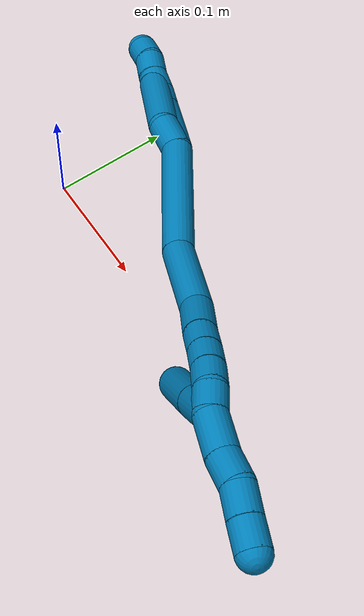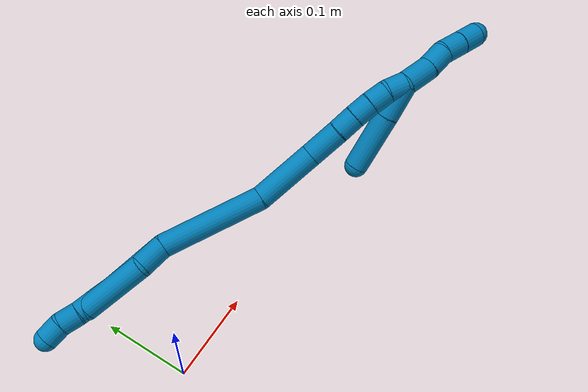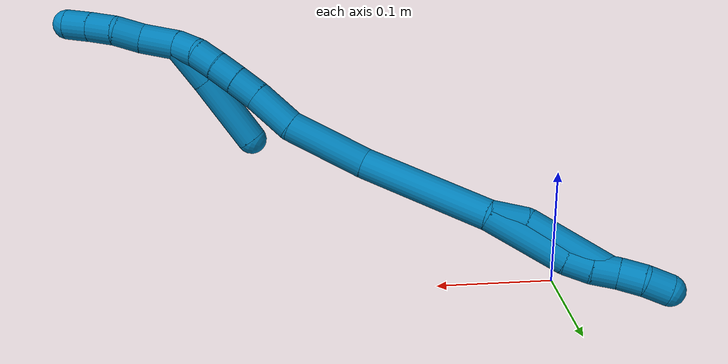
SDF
<sdf version="1.7">
 <world name="default">
  <model name="9">
   <static>0</static>
   <link name="9">
    <collision name="collision-cylinder-e_1_2_8">
     <pose>-0.001456 0.000214 -0.033982 -3.1353 -0.042818 2.84975</pose>
     <geometry><cylinder><radius>0.0125</radius><length>0.068028</length></cylinder></geometry>
     <surface>
      <friction><ode><mu>1.16</mu><mu2>1.16</mu2><slip1>0</slip1><slip2>0</slip2></ode></friction>
      <contact><ode><kp>1e+06</kp><kd>1</kd><max_vel>0</max_vel><min_depth>0.001</min_depth></ode></contact>
     </surface>
    </collision>
    <visual name="visual-cylinder-e_1_2_8">
     <pose>-0.001456 0.000214 -0.033982 -3.1353 -0.042818 2.84975</pose>
     <geometry><cylinder><radius>0.0125</radius><length>0.068028</length></cylinder></geometry>
     <material><ambient>0 0.490196 0.709804 1</ambient></material>
    </visual>
    <collision name="collision-cylinder-e_2_8_9">
     <pose>-0.00538 0.000702 -0.078069 -3.11444 -0.2395 2.91683</pose>
     <geometry><cylinder><radius>0.0125</radius><length>0.020811</length></cylinder></geometry>
     <surface>
      <friction><ode><mu>1.16</mu><mu2>1.16</mu2><slip1>0</slip1><slip2>0</slip2></ode></friction>
      <contact><ode><kp>1e+06</kp><kd>1</kd><max_vel>0</max_vel><min_depth>0.001</min_depth></ode></contact>
     </surface>
    </collision>
    <visual name="visual-cylinder-e_2_8_9">
     <pose>-0.00538 0.000702 -0.078069 -3.11444 -0.2395 2.91683</pose>
     <geometry><cylinder><radius>0.0125</radius><length>0.020811</length></cylinder></geometry>
     <material><ambient>0 0.490196 0.709804 1</ambient></material>
    </visual>
    <collision name="collision-cylinder-e_3_9_10">
     <pose>-0.011578 0.000534 -0.097724 3.0953 -0.371881 -2.89671</pose>
     <geometry><cylinder><radius>0.0125</radius><length>0.020525</length></cylinder></geometry>
     <surface>
      <friction><ode><mu>1.16</mu><mu2>1.16</mu2><slip1>0</slip1><slip2>0</slip2></ode></friction>
      <contact><ode><kp>1e+06</kp><kd>1</kd><max_vel>0</max_vel><min_depth>0.001</min_depth></ode></contact>
     </surface>
    </collision>
    <visual name="visual-cylinder-e_3_9_10">
     <pose>-0.011578 0.000534 -0.097724 3.0953 -0.371881 -2.89671</pose>
     <geometry><cylinder><radius>0.0125</radius><length>0.020525</length></cylinder></geometry>
     <material><ambient>0 0.490196 0.709804 1</ambient></material>
    </visual>
    <collision name="collision-cylinder-e_4_10_11">
     <pose>-0.018528 0.001008 -0.116989 -3.04761 -0.318832 2.57248</pose>
     <geometry><cylinder><radius>0.0125</radius><length>0.020551</length></cylinder></geometry>
     <surface>
      <friction><ode><mu>1.16</mu><mu2>1.16</mu2><slip1>0</slip1><slip2>0</slip2></ode></friction>
      <contact><ode><kp>1e+06</kp><kd>1</kd><max_vel>0</max_vel><min_depth>0.001</min_depth></ode></contact>
     </surface>
    </collision>
    <visual name="visual-cylinder-e_4_10_11">
     <pose>-0.018528 0.001008 -0.116989 -3.04761 -0.318832 2.57248</pose>
     <geometry><cylinder><radius>0.0125</radius><length>0.020551</length></cylinder></geometry>
     <material><ambient>0 0.490196 0.709804 1</ambient></material>
    </visual>
    <collision name="collision-cylinder-e_5_11_6">
     <pose>-0.023378 0.00051 -0.136512 2.99848 -0.162935 -1.70066</pose>
     <geometry><cylinder><radius>0.0125</radius><length>0.020086</length></cylinder></geometry>
     <surface>
      <friction><ode><mu>1.16</mu><mu2>1.16</mu2><slip1>0</slip1><slip2>0</slip2></ode></friction>
      <contact><ode><kp>1e+06</kp><kd>1</kd><max_vel>0</max_vel><min_depth>0.001</min_depth></ode></contact>
     </surface>
    </collision>
    <visual name="visual-cylinder-e_5_11_6">
     <pose>-0.023378 0.00051 -0.136512 2.99848 -0.162935 -1.70066</pose>
     <geometry><cylinder><radius>0.0125</radius><length>0.020086</length></cylinder></geometry>
     <material><ambient>0 0.490196 0.709804 1</ambient></material>
    </visual>
    <collision name="collision-cylinder-e_1_2_12">
     <pose>-0.004839 -0.002045 -0.013832 2.99482 -0.333171 -2.3172</pose>
     <geometry><cylinder><radius>0.0125</radius><length>0.029593</length></cylinder></geometry>
     <surface>
      <friction><ode><mu>1.16</mu><mu2>1.16</mu2><slip1>0</slip1><slip2>0</slip2></ode></friction>
      <contact><ode><kp>1e+06</kp><kd>1</kd><max_vel>0</max_vel><min_depth>0.001</min_depth></ode></contact>
     </surface>
    </collision>
    <visual name="visual-cylinder-e_1_2_12">
     <pose>-0.004839 -0.002045 -0.013832 2.99482 -0.333171 -2.3172</pose>
     <geometry><cylinder><radius>0.0125</radius><length>0.029593</length></cylinder></geometry>
     <material><ambient>0 0.490196 0.709804 1</ambient></material>
    </visual>
    <collision name="collision-cylinder-e_2_12_5">
     <pose>-0.011002 -0.002605 -0.062812 -3.09936 -0.037616 1.4553</pose>
     <geometry><cylinder><radius>0.0125</radius><length>0.070407</length></cylinder></geometry>
     <surface>
      <friction><ode><mu>1.16</mu><mu2>1.16</mu2><slip1>0</slip1><slip2>0</slip2></ode></friction>
      <contact><ode><kp>1e+06</kp><kd>1</kd><max_vel>0</max_vel><min_depth>0.001</min_depth></ode></contact>
     </surface>
    </collision>
    <visual name="visual-cylinder-e_2_12_5">
     <pose>-0.011002 -0.002605 -0.062812 -3.09936 -0.037616 1.4553</pose>
     <geometry><cylinder><radius>0.0125</radius><length>0.070407</length></cylinder></geometry>
     <material><ambient>0 0.490196 0.709804 1</ambient></material>
    </visual>
    <collision name="collision-cylinder-e_1_2_13">
     <pose>0.011543 -0.011772 0.053384 0.217035 0.208104 0.022753</pose>
     <geometry><cylinder><radius>0.0125</radius><length>0.111744</length></cylinder></geometry>
     <surface>
      <friction><ode><mu>1.16</mu><mu2>1.16</mu2><slip1>0</slip1><slip2>0</slip2></ode></friction>
      <contact><ode><kp>1e+06</kp><kd>1</kd><max_vel>0</max_vel><min_depth>0.001</min_depth></ode></contact>
     </surface>
    </collision>
    <visual name="visual-cylinder-e_1_2_13">
     <pose>0.011543 -0.011772 0.053384 0.217035 0.208104 0.022753</pose>
     <geometry><cylinder><radius>0.0125</radius><length>0.111744</length></cylinder></geometry>
     <material><ambient>0 0.490196 0.709804 1</ambient></material>
    </visual>
    <collision name="collision-cylinder-e_2_13_14">
     <pose>0.026189 -0.023037 0.140661 -0.014927 0.091254 -0.000682</pose>
     <geometry><cylinder><radius>0.0125</radius><length>0.068077</length></cylinder></geometry>
     <surface>
      <friction><ode><mu>1.16</mu><mu2>1.16</mu2><slip1>0</slip1><slip2>0</slip2></ode></friction>
      <contact><ode><kp>1e+06</kp><kd>1</kd><max_vel>0</max_vel><min_depth>0.001</min_depth></ode></contact>
     </surface>
    </collision>
    <visual name="visual-cylinder-e_2_13_14">
     <pose>0.026189 -0.023037 0.140661 -0.014927 0.091254 -0.000682</pose>
     <geometry><cylinder><radius>0.0125</radius><length>0.068077</length></cylinder></geometry>
     <material><ambient>0 0.490196 0.709804 1</ambient></material>
    </visual>
    <collision name="collision-cylinder-e_3_14_15">
     <pose>0.026399 -0.023478 0.193013 0.051231 -0.155174 -0.003984</pose>
     <geometry><cylinder><radius>0.0125</radius><length>0.037415</length></cylinder></geometry>
     <surface>
      <friction><ode><mu>1.16</mu><mu2>1.16</mu2><slip1>0</slip1><slip2>0</slip2></ode></friction>
      <contact><ode><kp>1e+06</kp><kd>1</kd><max_vel>0</max_vel><min_depth>0.001</min_depth></ode></contact>
     </surface>
    </collision>
    <visual name="visual-cylinder-e_3_14_15">
     <pose>0.026399 -0.023478 0.193013 0.051231 -0.155174 -0.003984</pose>
     <geometry><cylinder><radius>0.0125</radius><length>0.037415</length></cylinder></geometry>
     <material><ambient>0 0.490196 0.709804 1</ambient></material>
    </visual>
    <collision name="collision-cylinder-e_4_15_16">
     <pose>0.022575 -0.024496 0.222501 0.006527 -0.084371 -0.000275</pose>
     <geometry><cylinder><radius>0.0125</radius><length>0.022137</length></cylinder></geometry>
     <surface>
      <friction><ode><mu>1.16</mu><mu2>1.16</mu2><slip1>0</slip1><slip2>0</slip2></ode></friction>
      <contact><ode><kp>1e+06</kp><kd>1</kd><max_vel>0</max_vel><min_depth>0.001</min_depth></ode></contact>
     </surface>
    </collision>
    <visual name="visual-cylinder-e_4_15_16">
     <pose>0.022575 -0.024496 0.222501 0.006527 -0.084371 -0.000275</pose>
     <geometry><cylinder><radius>0.0125</radius><length>0.022137</length></cylinder></geometry>
     <material><ambient>0 0.490196 0.709804 1</ambient></material>
    </visual>
    <collision name="collision-cylinder-e_5_16_17">
     <pose>0.021069 -0.024979 0.243775 0.040071 -0.055913 -0.001121</pose>
     <geometry><cylinder><radius>0.0125</radius><length>0.020537</length></cylinder></geometry>
     <surface>
      <friction><ode><mu>1.16</mu><mu2>1.16</mu2><slip1>0</slip1><slip2>0</slip2></ode></friction>
      <contact><ode><kp>1e+06</kp><kd>1</kd><max_vel>0</max_vel><min_depth>0.001</min_depth></ode></contact>
     </surface>
    </collision>
    <visual name="visual-cylinder-e_5_16_17">
     <pose>0.021069 -0.024979 0.243775 0.040071 -0.055913 -0.001121</pose>
     <geometry><cylinder><radius>0.0125</radius><length>0.020537</length></cylinder></geometry>
     <material><ambient>0 0.490196 0.709804 1</ambient></material>
    </visual>
    <collision name="collision-cylinder-e_6_17_18">
     <pose>0.020427 -0.026482 0.264 0.109032 -0.006744 -0.000368</pose>
     <geometry><cylinder><radius>0.0125</radius><length>0.020082</length></cylinder></geometry>
     <surface>
      <friction><ode><mu>1.16</mu><mu2>1.16</mu2><slip1>0</slip1><slip2>0</slip2></ode></friction>
      <contact><ode><kp>1e+06</kp><kd>1</kd><max_vel>0</max_vel><min_depth>0.001</min_depth></ode></contact>
     </surface>
    </collision>
    <visual name="visual-cylinder-e_6_17_18">
     <pose>0.020427 -0.026482 0.264 0.109032 -0.006744 -0.000368</pose>
     <geometry><cylinder><radius>0.0125</radius><length>0.020082</length></cylinder></geometry>
     <material><ambient>0 0.490196 0.709804 1</ambient></material>
    </visual>
    <collision name="collision-cylinder-e_7_18_1">
     <pose>0.022504 -0.030098 0.28342 0.261194 0.216082 0.02849</pose>
     <geometry><cylinder><radius>0.0125</radius><length>0.020007</length></cylinder></geometry>
     <surface>
      <friction><ode><mu>1.16</mu><mu2>1.16</mu2><slip1>0</slip1><slip2>0</slip2></ode></friction>
      <contact><ode><kp>1e+06</kp><kd>1</kd><max_vel>0</max_vel><min_depth>0.001</min_depth></ode></contact>
     </surface>
    </collision>
    <visual name="visual-cylinder-e_7_18_1">
     <pose>0.022504 -0.030098 0.28342 0.261194 0.216082 0.02849</pose>
     <geometry><cylinder><radius>0.0125</radius><length>0.020007</length></cylinder></geometry>
     <material><ambient>0 0.490196 0.709804 1</ambient></material>
    </visual>
    <collision name="collision-cylinder-e_1_1_19">
     <pose>0.030321 -0.032721 0.307539 0.006768 0.368724 0.001262</pose>
     <geometry><cylinder><radius>0.0125</radius><length>0.031474</length></cylinder></geometry>
     <surface>
      <friction><ode><mu>1.16</mu><mu2>1.16</mu2><slip1>0</slip1><slip2>0</slip2></ode></friction>
      <contact><ode><kp>1e+06</kp><kd>1</kd><max_vel>0</max_vel><min_depth>0.001</min_depth></ode></contact>
     </surface>
    </collision>
    <visual name="visual-cylinder-e_1_1_19">
     <pose>0.030321 -0.032721 0.307539 0.006768 0.368724 0.001262</pose>
     <geometry><cylinder><radius>0.0125</radius><length>0.031474</length></cylinder></geometry>
     <material><ambient>0 0.490196 0.709804 1</ambient></material>
    </visual>
    <collision name="collision-cylinder-e_2_19_20">
     <pose>0.038906 -0.030975 0.333596 -0.160737 0.247557 -0.02004</pose>
     <geometry><cylinder><radius>0.0125</radius><length>0.023779</length></cylinder></geometry>
     <surface>
      <friction><ode><mu>1.16</mu><mu2>1.16</mu2><slip1>0</slip1><slip2>0</slip2></ode></friction>
      <contact><ode><kp>1e+06</kp><kd>1</kd><max_vel>0</max_vel><min_depth>0.001</min_depth></ode></contact>
     </surface>
    </collision>
    <visual name="visual-cylinder-e_2_19_20">
     <pose>0.038906 -0.030975 0.333596 -0.160737 0.247557 -0.02004</pose>
     <geometry><cylinder><radius>0.0125</radius><length>0.023779</length></cylinder></geometry>
     <material><ambient>0 0.490196 0.709804 1</ambient></material>
    </visual>
    <collision name="collision-cylinder-e_3_20_21">
     <pose>0.046355 -0.030111 0.355409 0.093746 0.408416 0.019428</pose>
     <geometry><cylinder><radius>0.0125</radius><length>0.02284</length></cylinder></geometry>
     <surface>
      <friction><ode><mu>1.16</mu><mu2>1.16</mu2><slip1>0</slip1><slip2>0</slip2></ode></friction>
      <contact><ode><kp>1e+06</kp><kd>1</kd><max_vel>0</max_vel><min_depth>0.001</min_depth></ode></contact>
     </surface>
    </collision>
    <visual name="visual-cylinder-e_3_20_21">
     <pose>0.046355 -0.030111 0.355409 0.093746 0.408416 0.019428</pose>
     <geometry><cylinder><radius>0.0125</radius><length>0.02284</length></cylinder></geometry>
     <material><ambient>0 0.490196 0.709804 1</ambient></material>
    </visual>
    <collision name="collision-cylinder-e_4_21_4">
     <pose>0.055584 -0.031785 0.375717 0.07004 0.442819 0.015772</pose>
     <geometry><cylinder><radius>0.0125</radius><length>0.021907</length></cylinder></geometry>
     <surface>
      <friction><ode><mu>1.16</mu><mu2>1.16</mu2><slip1>0</slip1><slip2>0</slip2></ode></friction>
      <contact><ode><kp>1e+06</kp><kd>1</kd><max_vel>0</max_vel><min_depth>0.001</min_depth></ode></contact>
     </surface>
    </collision>
    <visual name="visual-cylinder-e_4_21_4">
     <pose>0.055584 -0.031785 0.375717 0.07004 0.442819 0.015772</pose>
     <geometry><cylinder><radius>0.0125</radius><length>0.021907</length></cylinder></geometry>
     <material><ambient>0 0.490196 0.709804 1</ambient></material>
    </visual>
    <collision name="collision-cylinder-e_1_1_22">
     <pose>0.031862 -0.037009 0.276214 2.88384 0.396822 1.9965</pose>
     <geometry><cylinder><radius>0.0125</radius><length>0.037329</length></cylinder></geometry>
     <surface>
      <friction><ode><mu>1.16</mu><mu2>1.16</mu2><slip1>0</slip1><slip2>0</slip2></ode></friction>
      <contact><ode><kp>1e+06</kp><kd>1</kd><max_vel>0</max_vel><min_depth>0.001</min_depth></ode></contact>
     </surface>
    </collision>
    <visual name="visual-cylinder-e_1_1_22">
     <pose>0.031862 -0.037009 0.276214 2.88384 0.396822 1.9965</pose>
     <geometry><cylinder><radius>0.0125</radius><length>0.037329</length></cylinder></geometry>
     <material><ambient>0 0.490196 0.709804 1</ambient></material>
    </visual>
    <collision name="collision-cylinder-e_2_22_3">
     <pose>0.051772 -0.047757 0.231635 2.91774 0.417137 2.16521</pose>
     <geometry><cylinder><radius>0.0125</radius><length>0.062671</length></cylinder></geometry>
     <surface>
      <friction><ode><mu>1.16</mu><mu2>1.16</mu2><slip1>0</slip1><slip2>0</slip2></ode></friction>
      <contact><ode><kp>1e+06</kp><kd>1</kd><max_vel>0</max_vel><min_depth>0.001</min_depth></ode></contact>
     </surface>
    </collision>
    <visual name="visual-cylinder-e_2_22_3">
     <pose>0.051772 -0.047757 0.231635 2.91774 0.417137 2.16521</pose>
     <geometry><cylinder><radius>0.0125</radius><length>0.062671</length></cylinder></geometry>
     <material><ambient>0 0.490196 0.709804 1</ambient></material>
    </visual>
    <collision name="collision-sphere-3">
     <pose>0.064467 -0.054117 0.203701 0 -0 0</pose>
     <geometry><sphere><radius>0.0125</radius></sphere></geometry>
     <surface>
      <friction><ode><mu>1.16</mu><mu2>1.16</mu2><slip1>0</slip1><slip2>0</slip2></ode></friction>
      <contact><ode><kp>1e+06</kp><kd>1</kd><max_vel>0</max_vel><min_depth>0.001</min_depth></ode></contact>
     </surface>
    </collision>
    <visual name="visual-sphere-3">
     <pose>0.064467 -0.054117 0.203701 0 -0 0</pose>
     <geometry><sphere><radius>0.0125</radius></sphere></geometry>
     <material><ambient>0 0.490196 0.709804 1</ambient></material>
    </visual>
    <collision name="collision-sphere-22">
     <pose>0.039076 -0.041397 0.259569 0 -0 0</pose>
     <geometry><sphere><radius>0.0125</radius></sphere></geometry>
     <surface>
      <friction><ode><mu>1.16</mu><mu2>1.16</mu2><slip1>0</slip1><slip2>0</slip2></ode></friction>
      <contact><ode><kp>1e+06</kp><kd>1</kd><max_vel>0</max_vel><min_depth>0.001</min_depth></ode></contact>
     </surface>
    </collision>
    <visual name="visual-sphere-22">
     <pose>0.039076 -0.041397 0.259569 0 -0 0</pose>
     <geometry><sphere><radius>0.0125</radius></sphere></geometry>
     <material><ambient>0 0.490196 0.709804 1</ambient></material>
    </visual>
    <collision name="collision-sphere-4">
     <pose>0.060278 -0.032478 0.385589 0 -0 0</pose>
     <geometry><sphere><radius>0.0125</radius></sphere></geometry>
     <surface>
      <friction><ode><mu>1.16</mu><mu2>1.16</mu2><slip1>0</slip1><slip2>0</slip2></ode></friction>
      <contact><ode><kp>1e+06</kp><kd>1</kd><max_vel>0</max_vel><min_depth>0.001</min_depth></ode></contact>
     </surface>
    </collision>
    <visual name="visual-sphere-4">
     <pose>0.060278 -0.032478 0.385589 0 -0 0</pose>
     <geometry><sphere><radius>0.0125</radius></sphere></geometry>
     <material><ambient>0 0.490196 0.709804 1</ambient></material>
    </visual>
    <collision name="collision-sphere-21">
     <pose>0.050891 -0.031092 0.365844 0 -0 0</pose>
     <geometry><sphere><radius>0.0125</radius></sphere></geometry>
     <surface>
      <friction><ode><mu>1.16</mu><mu2>1.16</mu2><slip1>0</slip1><slip2>0</slip2></ode></friction>
      <contact><ode><kp>1e+06</kp><kd>1</kd><max_vel>0</max_vel><min_depth>0.001</min_depth></ode></contact>
     </surface>
    </collision>
    <visual name="visual-sphere-21">
     <pose>0.050891 -0.031092 0.365844 0 -0 0</pose>
     <geometry><sphere><radius>0.0125</radius></sphere></geometry>
     <material><ambient>0 0.490196 0.709804 1</ambient></material>
    </visual>
    <collision name="collision-sphere-20">
     <pose>0.041819 -0.02913 0.344974 0 -0 0</pose>
     <geometry><sphere><radius>0.0125</radius></sphere></geometry>
     <surface>
      <friction><ode><mu>1.16</mu><mu2>1.16</mu2><slip1>0</slip1><slip2>0</slip2></ode></friction>
      <contact><ode><kp>1e+06</kp><kd>1</kd><max_vel>0</max_vel><min_depth>0.001</min_depth></ode></contact>
     </surface>
    </collision>
    <visual name="visual-sphere-20">
     <pose>0.041819 -0.02913 0.344974 0 -0 0</pose>
     <geometry><sphere><radius>0.0125</radius></sphere></geometry>
     <material><ambient>0 0.490196 0.709804 1</ambient></material>
    </visual>
    <collision name="collision-sphere-6">
     <pose>-0.025007 -0.000903 -0.146321 0 -0 0</pose>
     <geometry><sphere><radius>0.0125</radius></sphere></geometry>
     <surface>
      <friction><ode><mu>1.16</mu><mu2>1.16</mu2><slip1>0</slip1><slip2>0</slip2></ode></friction>
      <contact><ode><kp>1e+06</kp><kd>1</kd><max_vel>0</max_vel><min_depth>0.001</min_depth></ode></contact>
     </surface>
    </collision>
    <visual name="visual-sphere-6">
     <pose>-0.025007 -0.000903 -0.146321 0 -0 0</pose>
     <geometry><sphere><radius>0.0125</radius></sphere></geometry>
     <material><ambient>0 0.490196 0.709804 1</ambient></material>
    </visual>
    <collision name="collision-sphere-11">
     <pose>-0.021749 0.001923 -0.126704 0 -0 0</pose>
     <geometry><sphere><radius>0.0125</radius></sphere></geometry>
     <surface>
      <friction><ode><mu>1.16</mu><mu2>1.16</mu2><slip1>0</slip1><slip2>0</slip2></ode></friction>
      <contact><ode><kp>1e+06</kp><kd>1</kd><max_vel>0</max_vel><min_depth>0.001</min_depth></ode></contact>
     </surface>
    </collision>
    <visual name="visual-sphere-11">
     <pose>-0.021749 0.001923 -0.126704 0 -0 0</pose>
     <geometry><sphere><radius>0.0125</radius></sphere></geometry>
     <material><ambient>0 0.490196 0.709804 1</ambient></material>
    </visual>
    <collision name="collision-sphere-10">
     <pose>-0.015307 9.2e-05 -0.107275 0 -0 0</pose>
     <geometry><sphere><radius>0.0125</radius></sphere></geometry>
     <surface>
      <friction><ode><mu>1.16</mu><mu2>1.16</mu2><slip1>0</slip1><slip2>0</slip2></ode></friction>
      <contact><ode><kp>1e+06</kp><kd>1</kd><max_vel>0</max_vel><min_depth>0.001</min_depth></ode></contact>
     </surface>
    </collision>
    <visual name="visual-sphere-10">
     <pose>-0.015307 9.2e-05 -0.107275 0 -0 0</pose>
     <geometry><sphere><radius>0.0125</radius></sphere></geometry>
     <material><ambient>0 0.490196 0.709804 1</ambient></material>
    </visual>
    <collision name="collision-sphere-9">
     <pose>-0.007849 0.000977 -0.088174 0 -0 0</pose>
     <geometry><sphere><radius>0.0125</radius></sphere></geometry>
     <surface>
      <friction><ode><mu>1.16</mu><mu2>1.16</mu2><slip1>0</slip1><slip2>0</slip2></ode></friction>
      <contact><ode><kp>1e+06</kp><kd>1</kd><max_vel>0</max_vel><min_depth>0.001</min_depth></ode></contact>
     </surface>
    </collision>
    <visual name="visual-sphere-9">
     <pose>-0.007849 0.000977 -0.088174 0 -0 0</pose>
     <geometry><sphere><radius>0.0125</radius></sphere></geometry>
     <material><ambient>0 0.490196 0.709804 1</ambient></material>
    </visual>
    <collision name="collision-sphere-2">
     <geometry><sphere><radius>0.0125</radius></sphere></geometry>
     <surface>
      <friction><ode><mu>1.16</mu><mu2>1.16</mu2><slip1>0</slip1><slip2>0</slip2></ode></friction>
      <contact><ode><kp>1e+06</kp><kd>1</kd><max_vel>0</max_vel><min_depth>0.001</min_depth></ode></contact>
     </surface>
    </collision>
    <visual name="visual-sphere-2">
     <geometry><sphere><radius>0.0125</radius></sphere></geometry>
     <material><ambient>0 0.490196 0.709804 1</ambient></material>
    </visual>
    <collision name="collision-sphere-19">
     <pose>0.035993 -0.03282 0.322218 0 -0 0</pose>
     <geometry><sphere><radius>0.0125</radius></sphere></geometry>
     <surface>
      <friction><ode><mu>1.16</mu><mu2>1.16</mu2><slip1>0</slip1><slip2>0</slip2></ode></friction>
      <contact><ode><kp>1e+06</kp><kd>1</kd><max_vel>0</max_vel><min_depth>0.001</min_depth></ode></contact>
     </surface>
    </collision>
    <visual name="visual-sphere-19">
     <pose>0.035993 -0.03282 0.322218 0 -0 0</pose>
     <geometry><sphere><radius>0.0125</radius></sphere></geometry>
     <material><ambient>0 0.490196 0.709804 1</ambient></material>
    </visual>
    <collision name="collision-sphere-8">
     <pose>-0.002912 0.000428 -0.067964 0 -0 0</pose>
     <geometry><sphere><radius>0.0125</radius></sphere></geometry>
     <surface>
      <friction><ode><mu>1.16</mu><mu2>1.16</mu2><slip1>0</slip1><slip2>0</slip2></ode></friction>
      <contact><ode><kp>1e+06</kp><kd>1</kd><max_vel>0</max_vel><min_depth>0.001</min_depth></ode></contact>
     </surface>
    </collision>
    <visual name="visual-sphere-8">
     <pose>-0.002912 0.000428 -0.067964 0 -0 0</pose>
     <geometry><sphere><radius>0.0125</radius></sphere></geometry>
     <material><ambient>0 0.490196 0.709804 1</ambient></material>
    </visual>
    <collision name="collision-sphere-12">
     <pose>-0.009678 -0.00409 -0.027665 0 -0 0</pose>
     <geometry><sphere><radius>0.0125</radius></sphere></geometry>
     <surface>
      <friction><ode><mu>1.16</mu><mu2>1.16</mu2><slip1>0</slip1><slip2>0</slip2></ode></friction>
      <contact><ode><kp>1e+06</kp><kd>1</kd><max_vel>0</max_vel><min_depth>0.001</min_depth></ode></contact>
     </surface>
    </collision>
    <visual name="visual-sphere-12">
     <pose>-0.009678 -0.00409 -0.027665 0 -0 0</pose>
     <geometry><sphere><radius>0.0125</radius></sphere></geometry>
     <material><ambient>0 0.490196 0.709804 1</ambient></material>
    </visual>
    <collision name="collision-sphere-5">
     <pose>-0.012326 -0.00112 -0.097959 0 -0 0</pose>
     <geometry><sphere><radius>0.0125</radius></sphere></geometry>
     <surface>
      <friction><ode><mu>1.16</mu><mu2>1.16</mu2><slip1>0</slip1><slip2>0</slip2></ode></friction>
      <contact><ode><kp>1e+06</kp><kd>1</kd><max_vel>0</max_vel><min_depth>0.001</min_depth></ode></contact>
     </surface>
    </collision>
    <visual name="visual-sphere-5">
     <pose>-0.012326 -0.00112 -0.097959 0 -0 0</pose>
     <geometry><sphere><radius>0.0125</radius></sphere></geometry>
     <material><ambient>0 0.490196 0.709804 1</ambient></material>
    </visual>
    <collision name="collision-sphere-13">
     <pose>0.023087 -0.023543 0.106768 0 -0 0</pose>
     <geometry><sphere><radius>0.0125</radius></sphere></geometry>
     <surface>
      <friction><ode><mu>1.16</mu><mu2>1.16</mu2><slip1>0</slip1><slip2>0</slip2></ode></friction>
      <contact><ode><kp>1e+06</kp><kd>1</kd><max_vel>0</max_vel><min_depth>0.001</min_depth></ode></contact>
     </surface>
    </collision>
    <visual name="visual-sphere-13">
     <pose>0.023087 -0.023543 0.106768 0 -0 0</pose>
     <geometry><sphere><radius>0.0125</radius></sphere></geometry>
     <material><ambient>0 0.490196 0.709804 1</ambient></material>
    </visual>
    <collision name="collision-sphere-14">
     <pose>0.029291 -0.022531 0.174555 0 -0 0</pose>
     <geometry><sphere><radius>0.0125</radius></sphere></geometry>
     <surface>
      <friction><ode><mu>1.16</mu><mu2>1.16</mu2><slip1>0</slip1><slip2>0</slip2></ode></friction>
      <contact><ode><kp>1e+06</kp><kd>1</kd><max_vel>0</max_vel><min_depth>0.001</min_depth></ode></contact>
     </surface>
    </collision>
    <visual name="visual-sphere-14">
     <pose>0.029291 -0.022531 0.174555 0 -0 0</pose>
     <geometry><sphere><radius>0.0125</radius></sphere></geometry>
     <material><ambient>0 0.490196 0.709804 1</ambient></material>
    </visual>
    <collision name="collision-sphere-15">
     <pose>0.023508 -0.024424 0.211472 0 -0 0</pose>
     <geometry><sphere><radius>0.0125</radius></sphere></geometry>
     <surface>
      <friction><ode><mu>1.16</mu><mu2>1.16</mu2><slip1>0</slip1><slip2>0</slip2></ode></friction>
      <contact><ode><kp>1e+06</kp><kd>1</kd><max_vel>0</max_vel><min_depth>0.001</min_depth></ode></contact>
     </surface>
    </collision>
    <visual name="visual-sphere-15">
     <pose>0.023508 -0.024424 0.211472 0 -0 0</pose>
     <geometry><sphere><radius>0.0125</radius></sphere></geometry>
     <material><ambient>0 0.490196 0.709804 1</ambient></material>
    </visual>
    <collision name="collision-sphere-16">
     <pose>0.021642 -0.024568 0.23353 0 -0 0</pose>
     <geometry><sphere><radius>0.0125</radius></sphere></geometry>
     <surface>
      <friction><ode><mu>1.16</mu><mu2>1.16</mu2><slip1>0</slip1><slip2>0</slip2></ode></friction>
      <contact><ode><kp>1e+06</kp><kd>1</kd><max_vel>0</max_vel><min_depth>0.001</min_depth></ode></contact>
     </surface>
    </collision>
    <visual name="visual-sphere-16">
     <pose>0.021642 -0.024568 0.23353 0 -0 0</pose>
     <geometry><sphere><radius>0.0125</radius></sphere></geometry>
     <material><ambient>0 0.490196 0.709804 1</ambient></material>
    </visual>
    <collision name="collision-sphere-17">
     <pose>0.020495 -0.02539 0.254019 0 -0 0</pose>
     <geometry><sphere><radius>0.0125</radius></sphere></geometry>
     <surface>
      <friction><ode><mu>1.16</mu><mu2>1.16</mu2><slip1>0</slip1><slip2>0</slip2></ode></friction>
      <contact><ode><kp>1e+06</kp><kd>1</kd><max_vel>0</max_vel><min_depth>0.001</min_depth></ode></contact>
     </surface>
    </collision>
    <visual name="visual-sphere-17">
     <pose>0.020495 -0.02539 0.254019 0 -0 0</pose>
     <geometry><sphere><radius>0.0125</radius></sphere></geometry>
     <material><ambient>0 0.490196 0.709804 1</ambient></material>
    </visual>
    <collision name="collision-sphere-18">
     <pose>0.020359 -0.027575 0.273981 0 -0 0</pose>
     <geometry><sphere><radius>0.0125</radius></sphere></geometry>
     <surface>
      <friction><ode><mu>1.16</mu><mu2>1.16</mu2><slip1>0</slip1><slip2>0</slip2></ode></friction>
      <contact><ode><kp>1e+06</kp><kd>1</kd><max_vel>0</max_vel><min_depth>0.001</min_depth></ode></contact>
     </surface>
    </collision>
    <visual name="visual-sphere-18">
     <pose>0.020359 -0.027575 0.273981 0 -0 0</pose>
     <geometry><sphere><radius>0.0125</radius></sphere></geometry>
     <material><ambient>0 0.490196 0.709804 1</ambient></material>
    </visual>
    <collision name="collision-sphere-1">
     <pose>0.024649 -0.032621 0.29286 0 -0 0</pose>
     <geometry><sphere><radius>0.0125</radius></sphere></geometry>
     <surface>
      <friction><ode><mu>1.16</mu><mu2>1.16</mu2><slip1>0</slip1><slip2>0</slip2></ode></friction>
      <contact><ode><kp>1e+06</kp><kd>1</kd><max_vel>0</max_vel><min_depth>0.001</min_depth></ode></contact>
     </surface>
    </collision>
    <visual name="visual-sphere-1">
     <pose>0.024649 -0.032621 0.29286 0 -0 0</pose>
     <geometry><sphere><radius>0.0125</radius></sphere></geometry>
     <material><ambient>0 0.490196 0.709804 1</ambient></material>
    </visual>
    <inertial>
     <pose>0.016302 -0.018199 0.11538 0 -0 0</pose>
     <mass>0.75</mass>
     <inertia><ixx>0.00019</ixx><ixy>0</ixy><ixz>0</ixz><iyy>0.000274</iyy><iyz>0</iyz><izz>-2e-06</izz></inertia>
    </inertial>
   </link>
   <pose>0.072675 0.069785 0.094428 0.442012 1.04048 0.06644</pose>
  </model>
 </world>
</sdf>
